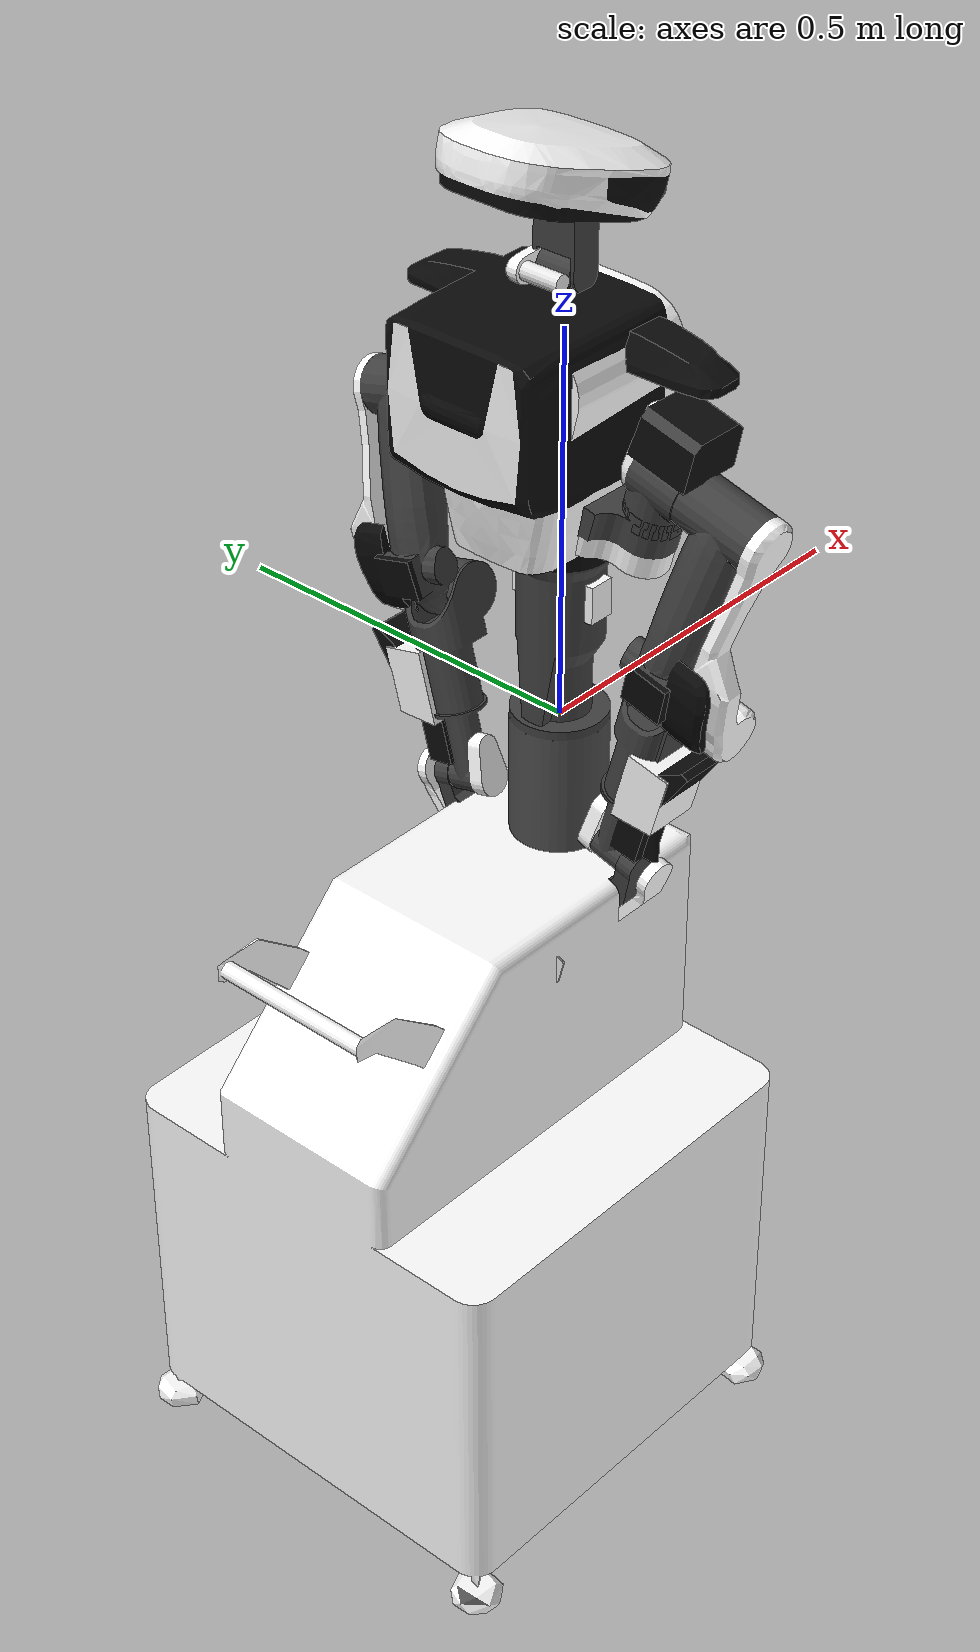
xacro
<?xml version="1.0"?>
<robot name="NextageOpen"
       xmlns:xacro="http://www.ros.org/wiki/xacro">

  <xacro:include filename="$(find nextage_description)/urdf/NextageOpen.urdf" />
  <xacro:include filename="$(find nextage_description)/urdf/nxo_gz_camera.xacro" />

  <xacro:property name="M_PI" value="3.1415926535897931" />
  <xacro:property name="jnt_head_camera_displacement_x" value="0.0175" />
  <xacro:property name="jnt_head_camera_displacement_y" value="0.0725" />
  <xacro:property name="jnt_head_camera_displacement_z" value="0.105" />
  <xacro:property name="jnt_head_camera_rot_y" value="0.25" />
  <xacro:property name="link_head_camera_rot_z" value="0.05" />

  <xacro:camera_joint_link_gzplugin
         camera_name="CAMERA_HEAD_L" link_parent="HEAD_JOINT1_Link"
         jnt_displacement_x="${jnt_head_camera_displacement_x}" jnt_displacement_y="${jnt_head_camera_displacement_y}" jnt_displacement_z="${jnt_head_camera_displacement_z}"
         jnt_rotation_x="0" jnt_rotation_y="${jnt_head_camera_rot_y}" jnt_rotation_z="0"
         link_displacement_x="0.0325" link_displacement_y="0" link_displacement_z="0"
         link_rotation_x="0" link_rotation_y="${M_PI/2}" link_rotation_z="-${link_head_camera_rot_z}" />

  <xacro:camera_joint_link_gzplugin
         camera_name="CAMERA_HEAD_R" link_parent="HEAD_JOINT1_Link"
         jnt_displacement_x="${jnt_head_camera_displacement_x}" jnt_displacement_y="-${jnt_head_camera_displacement_y}" jnt_displacement_z="${jnt_head_camera_displacement_z}"
         jnt_rotation_x="0" jnt_rotation_y="${jnt_head_camera_rot_y}" jnt_rotation_z="0"
         link_displacement_x="0.0325" link_displacement_y="0" link_displacement_z="0"
         link_rotation_x="0" link_rotation_y="${M_PI/2}" link_rotation_z="${link_head_camera_rot_z}" />

  <!-- TODO hand cameras can be added here with the very similar code as
            headmount cameras. -->
</robot>

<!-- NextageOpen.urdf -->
<robot name="NextageOpen"
       xmlns:xi="http://www.w3.org/2001/XInclude"
       xmlns:gazebo="http://playerstage.sourceforge.net/gazebo/xmlschema/#gz"
       xmlns:model="http://playerstage.sourceforge.net/gazebo/xmlschema/#model"
       xmlns:sensor="http://playerstage.sourceforge.net/gazebo/xmlschema/#sensor"
       xmlns:body="http://playerstage.sourceforge.net/gazebo/xmlschema/#body"
       xmlns:geom="http://playerstage.sourceforge.net/gazebo/xmlschema/#geom"
       xmlns:joint="http://playerstage.sourceforge.net/gazebo/xmlschema/#joint"
       xmlns:interface="http://playerstage.sourceforge.net/gazebo/xmlschema/#interface"
       xmlns:rendering="http://playerstage.sourceforge.net/gazebo/xmlschema/#rendering"
       xmlns:renderable="http://playerstage.sourceforge.net/gazebo/xmlschema/#renderable"
       xmlns:controller="http://playerstage.sourceforge.net/gazebo/xmlschema/#controller"
       xmlns:physics="http://playerstage.sourceforge.net/gazebo/xmlschema/#physics"
       xmlns:xacro="http://www.ros.org/wiki/xacro">
  <xacro:include filename="$(find nextage_description)/urdf/materials.urdf.xacro" />

  <xacro:macro name="gazebo_nx_link" params="name color">
    <gazebo reference="gazebo_${name}">
      <material>Gazebo/${color}</material>
    </gazebo>
  </xacro:macro>

  <xacro:macro name="transmission_nx_joint" params="name">
    <transmission name="${name}_Trans">
      <type>transmission_interface/SimpleTransmission</type>
      <joint name="${name}">
        <hardwareInterface>EffortJointInterface</hardwareInterface>
      </joint>
      <actuator name="${name}_Motor">
        <hardwareInterface>EffortJointInterface</hardwareInterface>
        <mechanicalReduction>1</mechanicalReduction>
      </actuator>
    </transmission>
  </xacro:macro>

  <xacro:gazebo_nx_link name="WAIST" color="Black" />
  <link name="WAIST">
    <visual>
      <origin xyz="0 0 0.97" rpy="0 -0 0"/>
      <geometry>
        <mesh filename="package://nextage_description/urdf/meshes/WAIST_Link_mesh.dae" scale="1 1 1" />
      </geometry>
    </visual>
    <collision>
      <origin xyz="0 0 0.97" rpy="0 -0 0"/>
      <geometry>
        <mesh filename="package://nextage_description/urdf/meshes/WAIST_Link_mesh.dae" scale="1 1 1" />
      </geometry>
    </collision>
    <inertial>
      <mass value="1000" />
      <origin xyz="0 0 0" rpy="0 -0 0"/>
      <inertia ixx="20" ixy="0" ixz="0" iyy="20" iyz="0" izz="20"/>
    </inertial>
  </link>

  <xacro:gazebo_nx_link name="CHEST_JOINT0_Link" color="Black" />
  <link name="CHEST_JOINT0_Link">
    <visual>
      <origin xyz="0 0 0" rpy="0 -0 0"/>
      <geometry>
        <mesh filename="package://nextage_description/urdf/meshes/CHEST_JOINT0_Link_mesh.dae" scale="1 1 1" />
      </geometry>
    </visual>
    <collision>
      <origin xyz="0 0 0" rpy="0 -0 0"/>
      <geometry>
        <mesh filename="package://nextage_description/urdf/meshes/CHEST_JOINT0_Link_mesh.dae" scale="1 1 1" />
      </geometry>
    </collision>
    <inertial>
      <mass value="3.0" />
      <origin xyz="0 0 0" rpy="0 -0 0"/>
      <inertia ixx="0.0639575" ixy="-0.00022833" ixz="0.00011172" iyy="0.0310845" iyz="6.48e-05" izz="0.0501107"/>
    </inertial>
  </link>

  <xacro:gazebo_nx_link name="HEAD_JOINT0_Link" color="Black" />
  <link name="HEAD_JOINT0_Link">
    <visual>
      <origin xyz="0 0 0.5695" rpy="0 -0 0"/>
      <geometry>
        <mesh filename="package://nextage_description/urdf/meshes/HEAD_JOINT0_Link_mesh.dae" scale="1 1 1" />
      </geometry>
    </visual>
    <collision>
      <origin xyz="0 0 0.5695" rpy="0 -0 0"/>
      <geometry>
        <mesh filename="package://nextage_description/urdf/meshes/HEAD_JOINT0_Link_mesh.dae" scale="1 1 1" />
      </geometry>
    </collision>
    <inertial>
      <mass value="0.317929" />
      <origin xyz="-2.292e-05 0.00547848 -0.00784016" rpy="0 -0 0"/>
      <inertia ixx="0.00027682" ixy="3e-08" ixz="-3.3e-07" iyy="0.00013009" iyz="-1.092e-05" izz="0.00020954"/>
    </inertial>
  </link>

  <xacro:gazebo_nx_link name="HEAD_JOINT1_Link" color="Black" />
  <link name="HEAD_JOINT1_Link">
    <visual>
      <origin xyz="0 0 0" rpy="0 -0 0"/>
      <geometry>
        <mesh filename="package://nextage_description/urdf/meshes/HEAD_JOINT1_Link_mesh.dae" scale="1 1 1" />
      </geometry>
    </visual>
    <collision>
      <origin xyz="0 0 0" rpy="0 -0 0"/>
      <geometry>
        <mesh filename="package://nextage_description/urdf/meshes/HEAD_JOINT1_Link_mesh.dae" scale="1 1 1" />
      </geometry>
    </collision>
    <inertial>
      <mass value="0.0808593" />
      <inertia ixx="1e-3" ixy="0" ixz="0" iyy="1e-3" iyz="0" izz="1e-3"/>
    </inertial>
  </link>

  <xacro:gazebo_nx_link name="LARM_JOINT0_Link" color="Black" />
  <link name="LARM_JOINT0_Link">
    <visual>
      <origin xyz="0 0.145 0.370296" rpy="-0.261799 0 0"/>
      <geometry>
        <mesh filename="package://nextage_description/urdf/meshes/LARM_JOINT0_Link_mesh.dae" scale="1 1 1" />
      </geometry>
    </visual>
    <collision>
      <origin xyz="0 0.145 0.370296" rpy="-0.261799 0 0"/>
      <geometry>
        <mesh filename="package://nextage_description/urdf/meshes/LARM_JOINT0_Link_mesh.dae" scale="1 1 1" />
      </geometry>
    </collision>
    <inertial>
      <mass value="1.32626" />
      <origin xyz="-0.00226388 -0.00521383 0.0156081" rpy="0 -0 0"/>
      <inertia ixx="0.00207537" ixy="0.00011276" ixz="8.927e-05" iyy="0.00240295" iyz="-4.57e-05" izz="0.00141912"/>
    </inertial>
  </link>
  <xacro:gazebo_nx_link name="LARM_JOINT1_Link" color="Black" />
  <link name="LARM_JOINT1_Link">
    <visual>
      <origin xyz="0 0 0" rpy="0 -0 0"/>
      <geometry>
        <mesh filename="package://nextage_description/urdf/meshes/LARM_JOINT1_Link_mesh.dae" scale="1 1 1" />
      </geometry>
    </visual>
    <collision>
      <origin xyz="0 0 0" rpy="0 -0 0"/>
      <geometry>
        <mesh filename="package://nextage_description/urdf/meshes/LARM_JOINT1_Link_mesh.dae" scale="1 1 1" />
      </geometry>
    </collision>
    <inertial>
      <mass value="1.14898" />
      <origin xyz="-5.236e-05 0.0583134 -0.107061" rpy="0 -0 0"/>
      <inertia ixx="0.0154168" ixy="9.95417e-07" ixz="3.38147e-06" iyy="0.0147117" iyz="0.00213719" izz="0.0012658"/>
    </inertial>
  </link>
  <xacro:gazebo_nx_link name="LARM_JOINT2_Link" color="Black" />
  <link name="LARM_JOINT2_Link">
    <visual>
      <origin xyz="0 0.095 -0.25" rpy="0 -0 0"/>
      <geometry>
        <mesh filename="package://nextage_description/urdf/meshes/LARM_JOINT2_Link_mesh.dae" scale="1 1 1" />
      </geometry>
    </visual>
    <collision>
      <origin xyz="0 0.095 -0.25" rpy="0 -0 0"/>
      <geometry>
        <mesh filename="package://nextage_description/urdf/meshes/LARM_JOINT2_Link_mesh.dae" scale="1 1 1" />
      </geometry>
    </collision>
    <inertial>
      <mass value="0.577518" />
      <origin xyz="-2.254e-05 0.00167107 -0.0715116" rpy="0 -0 0"/>
      <inertia ixx="0.00143966" ixy="-3e-07" ixz="1.2e-06" iyy="0.00141763" iyz="-7.596e-05" izz="0.0001972"/>
    </inertial>
  </link>
  <xacro:gazebo_nx_link name="LARM_JOINT3_Link" color="Black" />
  <link name="LARM_JOINT3_Link">
    <visual>
      <origin xyz="-0.03 0 0" rpy="0 -0 0"/>
      <geometry>
        <mesh filename="package://nextage_description/urdf/meshes/LARM_JOINT3_Link_mesh.dae" scale="1 1 1" />
      </geometry>
    </visual>
    <collision>
      <origin xyz="-0.03 0 0" rpy="0 -0 0"/>
      <geometry>
        <mesh filename="package://nextage_description/urdf/meshes/LARM_JOINT3_Link_mesh.dae" scale="1 1 1" />
      </geometry>
    </collision>
    <inertial>
      <mass value="0.457418" />
      <origin xyz="-1.788e-05 -0.00395812 -0.20273" rpy="0 -0 0"/>
      <inertia ixx="0.00069205" ixy="3e-08" ixz="5.2e-07" iyy="0.00068903" iyz="-1.915e-05" izz="0.00013509"/>
    </inertial>
  </link>
  <xacro:gazebo_nx_link name="LARM_JOINT4_Link" color="Black" />
  <link name="LARM_JOINT4_Link">
    <visual>
      <origin xyz="0 0 -0.235" rpy="0 -0 0"/>
      <geometry>
        <mesh filename="package://nextage_description/urdf/meshes/LARM_JOINT4_Link_mesh.dae" scale="1 1 1" />
      </geometry>
    </visual>
    <collision>
      <origin xyz="0 0 -0.235" rpy="0 -0 0"/>
      <geometry>
        <mesh filename="package://nextage_description/urdf/meshes/LARM_JOINT4_Link_mesh.dae" scale="1 1 1" />
      </geometry>
    </collision>
    <inertial>
      <mass value="0.418434" />
      <origin xyz="0.00243131 0.00379733 -0.0577036" rpy="0 -0 0"/>
      <inertia ixx="0.00052016" ixy="1.69e-06" ixz="7.9e-06" iyy="0.00050569" iyz="-5.377e-05" izz="0.00014004"/>
    </inertial>
  </link>
  <xacro:gazebo_nx_link name="LARM_JOINT5_Link" color="Black" />
  <link name="LARM_JOINT5_Link">
    <visual>
      <origin xyz="-0.047 0 -0.09" rpy="0 -0 0"/>
      <geometry>
        <mesh filename="package://nextage_description/urdf/meshes/LARM_JOINT5_Link_mesh.dae" scale="1 1 1" />
      </geometry>
    </visual>
    <collision>
      <origin xyz="-0.047 0 -0.09" rpy="0 -0 0"/>
      <geometry>
        <mesh filename="package://nextage_description/urdf/meshes/LARM_JOINT5_Link_mesh.dae" scale="1 1 1" />
      </geometry>
    </collision>
    <inertial>
      <mass value="1.05156" />
      <origin xyz="-0.048476 -3.2e-06 -0.0388988" rpy="0 -0 0"/>
      <inertia ixx="0.00194072" ixy="1.1e-07" ixz="-0.00042482" iyy="0.00209392" iyz="1.2e-07" izz="0.00035788"/>
    </inertial>
  </link>
  <xacro:gazebo_nx_link name="RARM_JOINT0_Link" color="Black" />
  <link name="RARM_JOINT0_Link">
    <visual>
      <origin xyz="0 -0.145 0.370296" rpy="0.261799 -0 0"/>
      <geometry>
        <mesh filename="package://nextage_description/urdf/meshes/RARM_JOINT0_Link_mesh.dae" scale="1 1 1" />
      </geometry>
    </visual>
    <collision>
      <origin xyz="0 -0.145 0.370296" rpy="0.261799 -0 0"/>
      <geometry>
        <mesh filename="package://nextage_description/urdf/meshes/RARM_JOINT0_Link_mesh.dae" scale="1 1 1" />
      </geometry>
    </collision>
    <inertial>
      <mass value="1.32626" />
      <origin xyz="-0.00226388 0.00521383 0.0156081" rpy="0 -0 0"/>
      <inertia ixx="0.00207537" ixy="-0.00011276" ixz="8.927e-05" iyy="0.00240295" iyz="4.57e-05" izz="0.00141912"/>
    </inertial>
  </link>
  <xacro:gazebo_nx_link name="RARM_JOINT1_Link" color="Black" />
  <link name="RARM_JOINT1_Link">
    <visual>
      <origin xyz="0 0 0" rpy="0 -0 0"/>
      <geometry>
        <mesh filename="package://nextage_description/urdf/meshes/RARM_JOINT1_Link_mesh.dae" scale="1 1 1" />
      </geometry>
    </visual>
    <collision>
      <origin xyz="0 0 0" rpy="0 -0 0"/>
      <geometry>
        <mesh filename="package://nextage_description/urdf/meshes/RARM_JOINT1_Link_mesh.dae" scale="1 1 1" />
      </geometry>
    </collision>
    <inertial>
      <mass value="1.14898" />
      <origin xyz="-5.236e-05 -0.0583134 -0.107061" rpy="0 -0 0"/>
      <inertia ixx="0.0154168" ixy="-9.95417e-07" ixz="3.38147e-06" iyy="0.0147117" iyz="-0.00213719" izz="0.0012658"/>
    </inertial>
  </link>
  <xacro:gazebo_nx_link name="RARM_JOINT2_Link" color="Black" />
  <link name="RARM_JOINT2_Link">
    <visual>
      <origin xyz="0 -0.095 -0.25" rpy="0 -0 0"/>
      <geometry>
        <mesh filename="package://nextage_description/urdf/meshes/RARM_JOINT2_Link_mesh.dae" scale="1 1 1" />
      </geometry>
    </visual>
    <collision>
      <origin xyz="0 -0.095 -0.25" rpy="0 -0 0"/>
      <geometry>
        <mesh filename="package://nextage_description/urdf/meshes/RARM_JOINT2_Link_mesh.dae" scale="1 1 1" />
      </geometry>
    </collision>
    <inertial>
      <mass value="0.577518" />
      <origin xyz="-2.254e-05 -0.00167107 -0.0715116" rpy="0 -0 0"/>
      <inertia ixx="0.00143966" ixy="3e-07" ixz="1.2e-06" iyy="0.00141763" iyz="7.596e-05" izz="0.0001972"/>
    </inertial>
  </link>
  <xacro:gazebo_nx_link name="RARM_JOINT4_Link" color="Black" />
  <link name="RARM_JOINT3_Link">
    <visual>
      <origin xyz="-0.03 0 0" rpy="0 -0 0"/>
      <geometry>
        <mesh filename="package://nextage_description/urdf/meshes/RARM_JOINT3_Link_mesh.dae" scale="1 1 1" />
      </geometry>
    </visual>
    <collision>
      <origin xyz="-0.03 0 0" rpy="0 -0 0"/>
      <geometry>
        <mesh filename="package://nextage_description/urdf/meshes/RARM_JOINT3_Link_mesh.dae" scale="1 1 1" />
      </geometry>
    </collision>
    <inertial>
      <mass value="0.457418" />
      <origin xyz="-1.788e-05 0.00395812 -0.20273" rpy="0 -0 0"/>
      <inertia ixx="0.00069205" ixy="-3e-08" ixz="5.2e-07" iyy="0.00068903" iyz="1.915e-05" izz="0.00013509"/>
    </inertial>
  </link>
  <xacro:gazebo_nx_link name="RARM_JOINT4_Link" color="Black" />
  <link name="RARM_JOINT4_Link">
    <visual>
      <origin xyz="0 0 -0.235" rpy="0 -0 0"/>
      <geometry>
        <mesh filename="package://nextage_description/urdf/meshes/RARM_JOINT4_Link_mesh.dae" scale="1 1 1" />
      </geometry>
    </visual>
    <collision>
      <origin xyz="0 0 -0.235" rpy="0 -0 0"/>
      <geometry>
        <mesh filename="package://nextage_description/urdf/meshes/RARM_JOINT4_Link_mesh.dae" scale="1 1 1" />
      </geometry>
    </collision>
    <inertial>
      <mass value="0.418434" />
      <origin xyz="0.00243131 -0.00379733 -0.0577036" rpy="0 -0 0"/>
      <inertia ixx="0.00052016" ixy="-1.69e-06" ixz="7.9e-06" iyy="0.00050569" iyz="5.377e-05" izz="0.00014004"/>
    </inertial>
  </link>
  <xacro:gazebo_nx_link name="RARM_JOINT5_Link" color="Black" />
  <link name="RARM_JOINT5_Link">
    <visual>
      <origin xyz="-0.047 0 -0.09" rpy="0 -0 0"/>
      <geometry>
        <mesh filename="package://nextage_description/urdf/meshes/RARM_JOINT5_Link_mesh.dae" scale="1 1 1" />
      </geometry>
    </visual>
    <collision>
      <origin xyz="-0.047 0 -0.09" rpy="0 -0 0"/>
      <geometry>
        <mesh filename="package://nextage_description/urdf/meshes/RARM_JOINT5_Link_mesh.dae" scale="1 1 1" />
      </geometry>
    </collision>
    <inertial>
      <mass value="1.05156" />
      <origin xyz="-0.048476 3.2e-06 -0.0388988" rpy="0 -0 0"/>
      <inertia ixx="0.00194072" ixy="-1.1e-07" ixz="-0.00042482" iyy="0.00209392" iyz="-1.2e-07" izz="0.00035788"/>
    </inertial>
  </link>
  <xacro:transmission_nx_joint name="CHEST_JOINT0" />
  <joint name="CHEST_JOINT0" type="revolute">
    <parent link="WAIST"/>
    <child  link="CHEST_JOINT0_Link"/>
    <origin xyz="0 0 0" rpy="0 -0 0 "/>
    <axis   xyz="0 0 1"/>
    <limit lower="-2.84489" upper="2.84489" effort="100" velocity="0.5" />
    <dynamics damping="0.2" friction="0" />
  </joint>
  <xacro:transmission_nx_joint name="HEAD_JOINT0" />
  <joint name="HEAD_JOINT0" type="revolute">
    <parent link="CHEST_JOINT0_Link"/>
    <child  link="HEAD_JOINT0_Link"/>
    <origin xyz="0 0 0.5695" rpy="0 -0 0 "/>
    <axis   xyz="0 0 1"/>
    <limit lower="-1.22173" upper="1.22173" effort="100" velocity="0.5" />
    <dynamics damping="0.2" friction="0" />
  </joint>
  <xacro:transmission_nx_joint name="HEAD_JOINT1" />
  <joint name="HEAD_JOINT1" type="revolute">
    <parent link="HEAD_JOINT0_Link"/>
    <child  link="HEAD_JOINT1_Link"/>
    <origin xyz="0 0 0" rpy="0 -0 0 "/>
    <axis   xyz="0 1 0"/>
    <limit lower="-0.349066" upper="1.22173" effort="100" velocity="0.5" />
    <dynamics damping="0.2" friction="0" />
  </joint>
  <xacro:transmission_nx_joint name="LARM_JOINT0" />
  <joint name="LARM_JOINT0" type="revolute">
    <parent link="CHEST_JOINT0_Link"/>
    <child  link="LARM_JOINT0_Link"/>
    <origin xyz="0 0.145 0.370296" rpy="-0.261799 0 0 "/>
    <axis   xyz="0 0 1"/>
    <limit lower="-1.53589" upper="1.53589" effort="150" velocity="0.5" />
    <dynamics damping="0.2" friction="0" />
  </joint>
  <xacro:transmission_nx_joint name="LARM_JOINT1" />
  <joint name="LARM_JOINT1" type="revolute">
    <parent link="LARM_JOINT0_Link"/>
    <child  link="LARM_JOINT1_Link"/>
    <origin xyz="0 0 0" rpy="0 -0 0 "/>
    <axis   xyz="0 1 0"/>
    <limit lower="-2.44346" upper="1.0472" effort="200" velocity="0.5" />
    <dynamics damping="0.2" friction="0" />
  </joint>
  <xacro:transmission_nx_joint name="LARM_JOINT2" />
  <joint name="LARM_JOINT2" type="revolute">
    <parent link="LARM_JOINT1_Link"/>
    <child  link="LARM_JOINT2_Link"/>
    <origin xyz="0 0.095 -0.25" rpy="0 -0 0 "/>
    <axis   xyz="0 1 0"/>
    <limit lower="-2.75762" upper="0" effort="100" velocity="0.5" />
    <dynamics damping="0.2" friction="0" />
  </joint>
  <xacro:transmission_nx_joint name="LARM_JOINT3" />
  <joint name="LARM_JOINT3" type="revolute">
    <parent link="LARM_JOINT2_Link"/>
    <child  link="LARM_JOINT3_Link"/>
    <origin xyz="-0.03 0 0" rpy="0 -0 0 "/>
    <axis   xyz="0 0 1"/>
    <limit lower="-1.8326" upper="2.87979" effort="100" velocity="0.5" />
    <dynamics damping="0.2" friction="0" />
  </joint>
  <xacro:transmission_nx_joint name="LARM_JOINT4" />
  <joint name="LARM_JOINT4" type="revolute">
    <parent link="LARM_JOINT3_Link"/>
    <child  link="LARM_JOINT4_Link"/>
    <origin xyz="0 0 -0.235" rpy="0 -0 0 "/>
    <axis   xyz="0 1 0"/>
    <limit lower="-1.74533" upper="1.74533" effort="100" velocity="0.5" />
    <dynamics damping="0.2" friction="0" />
  </joint>
  <xacro:transmission_nx_joint name="LARM_JOINT5" />
  <joint name="LARM_JOINT5" type="revolute">
    <parent link="LARM_JOINT4_Link"/>
    <child  link="LARM_JOINT5_Link"/>
    <origin xyz="-0.047 0 -0.09" rpy="0 -0 0 "/>
    <axis   xyz="1 0 0"/>
    <limit lower="-2.84489" upper="2.84489" effort="100" velocity="0.5" />
    <dynamics damping="0.2" friction="0" />
  </joint>
  <xacro:transmission_nx_joint name="RARM_JOINT0" />
  <joint name="RARM_JOINT0" type="revolute">
    <parent link="CHEST_JOINT0_Link"/>
    <child  link="RARM_JOINT0_Link"/>
    <origin xyz="0 -0.145 0.370296" rpy="0.261799 -0 0 "/>
    <axis   xyz="0 0 1"/>
    <limit lower="-1.53589" upper="1.53589" effort="150" velocity="0.5" />
    <dynamics damping="0.2" friction="0" />
  </joint>
  <xacro:transmission_nx_joint name="RARM_JOINT1" />
  <joint name="RARM_JOINT1" type="revolute">
    <parent link="RARM_JOINT0_Link"/>
    <child  link="RARM_JOINT1_Link"/>
    <origin xyz="0 0 0" rpy="0 -0 0 "/>
    <axis   xyz="0 1 0"/>
    <limit lower="-2.44346" upper="1.0472" effort="200" velocity="0.5" />
    <dynamics damping="0.2" friction="0" />
  </joint>
  <xacro:transmission_nx_joint name="RARM_JOINT2" />
  <joint name="RARM_JOINT2" type="revolute">
    <parent link="RARM_JOINT1_Link"/>
    <child  link="RARM_JOINT2_Link"/>
    <origin xyz="0 -0.095 -0.25" rpy="0 -0 0 "/>
    <axis   xyz="0 1 0"/>
    <limit lower="-2.75762" upper="0" effort="100" velocity="0.5" />
    <dynamics damping="0.2" friction="0" />
  </joint>
  <xacro:transmission_nx_joint name="RARM_JOINT3" />
  <joint name="RARM_JOINT3" type="revolute">
    <parent link="RARM_JOINT2_Link"/>
    <child  link="RARM_JOINT3_Link"/>
    <origin xyz="-0.03 0 0" rpy="0 -0 0 "/>
    <axis   xyz="0 0 1"/>
    <limit lower="-2.87979" upper="1.8326" effort="100" velocity="0.5" />
    <dynamics damping="0.2" friction="0" />
  </joint>
  <xacro:transmission_nx_joint name="RARM_JOINT4" />
  <joint name="RARM_JOINT4" type="revolute">
    <parent link="RARM_JOINT3_Link"/>
    <child  link="RARM_JOINT4_Link"/>
    <origin xyz="0 0 -0.235" rpy="0 -0 0 "/>
    <axis   xyz="0 1 0"/>
    <limit lower="-1.74533" upper="1.74533" effort="100" velocity="0.5" />
    <dynamics damping="0.2" friction="0" />
  </joint>
  <xacro:transmission_nx_joint name="RARM_JOINT5" />
  <joint name="RARM_JOINT5" type="revolute">
    <parent link="RARM_JOINT4_Link"/>
    <child  link="RARM_JOINT5_Link"/>
    <origin xyz="-0.047 0 -0.09" rpy="0 -0 0 "/>
    <axis   xyz="1 0 0"/>
    <limit lower="-2.84489" upper="2.84489" effort="100" velocity="0.5" />
    <dynamics damping="0.2" friction="0" />
  </joint>

  <!-- Gazebo plugin for ROS Control -->
  <gazebo>
    <plugin name="gazebo_ros_control" filename="libgazebo_ros_control.so">
      <robotNamespace>/</robotNamespace>
      <robotSimType>gazebo_ros_control/DefaultRobotHWSim</robotSimType>
      <legacyModeNS>true</legacyModeNS>
    </plugin>
  </gazebo>

</robot>

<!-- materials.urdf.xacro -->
<robot>

    <material name="Black">
        <color rgba="0.0 0.0 0.0 1.0"/>
    </material>

    <material name="Blue">
        <color rgba="0.0 0.0 0.8 1.0"/>
    </material>

    <material name="Green">
        <color rgba="0.0 0.8 0.0 1.0"/>
    </material>

    <material name="LightGrey">
        <color rgba="0.6 0.6 0.6 1.0"/>
    </material>

    <material name="Grey">
        <color rgba="0.4 0.4 0.4 1.0"/>
    </material>

    <material name="DarkGrey">
        <color rgba="0.2 0.2 0.2 1.0"/>
    </material>

    <material name="Red">
        <color rgba="0.8 0.0 0.0 1.0"/>
    </material>

    <material name="White">
        <color rgba="1.0 1.0 1.0 1.0"/>
    </material>

</robot>

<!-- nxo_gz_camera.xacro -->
<robot xmlns:xacro="http://www.ros.org/wiki/xacro">
	<xacro:property name="M_PI" value="3.1415926535897931" />

	<!-- Adding camera for simulation -->
	<xacro:macro name="camera_joint_link_gzplugin"
		params="camera_name link_parent jnt_displacement_x jnt_displacement_y jnt_displacement_z jnt_rotation_x jnt_rotation_y jnt_rotation_z link_displacement_x link_displacement_y link_displacement_z link_rotation_x link_rotation_y link_rotation_z">
		<joint name="${camera_name}" type="fixed">
			<origin
				xyz="${jnt_displacement_x} ${jnt_displacement_y} ${jnt_displacement_z}"
				rpy="${jnt_rotation_x} ${jnt_rotation_y} ${jnt_rotation_z}" />
			<parent link="${link_parent}" />
			<child link="${camera_name}_Link" />
		</joint>
		<link name="${camera_name}_Link">
			<visual>
				<origin
					xyz="${link_displacement_x} ${link_displacement_y} ${link_displacement_z}"
					rpy="${link_rotation_x} ${link_rotation_y} ${link_rotation_z}" />
				<geometry>
					<cylinder length="0.01" radius="0.015" />
				</geometry>
				<material name="blue" />
			</visual>
			<inertial>
				<origin xyz="0 0 0" rpy="0 0 0" />
				<mass value="1" />
				<inertia ixx="1.0" ixy="0.0" ixz="0.0" iyy="1.0" iyz="0.0"
					izz="1.0" />
			</inertial>
		</link>
		<gazebo reference="${camera_name}_Link">
			<sensor type="camera" name="${camera_name}">
				<update_rate>30.0</update_rate>
				<camera name="${camera_name}">
					<horizontal_fov>1.3962634</horizontal_fov>
					<image>
						<width>800</width>
						<height>800</height>
						<format>R8G8B8</format>
					</image>
					<clip>
						<near>0.1</near>
						<far>30</far>
					</clip>
					<noise>
						<type>gaussian</type>
						<!-- Noise is sampled independently per pixel on each frame. That pixel's
							noise value is added to each of its color channels, which at that point lie
							in the range [0,1]. -->
						<mean>0.0</mean>
						<stddev>0.007</stddev>
					</noise>
				</camera>
				<plugin name="camera_controller" filename="libgazebo_ros_camera.so">
					<alwaysOn>true</alwaysOn>
					<updateRate>0.0</updateRate>
					<cameraName>${camera_name}</cameraName>
					<imageTopicName>image_raw</imageTopicName>
					<cameraInfoTopicName>camera_info</cameraInfoTopicName>
					<frameName>${camera_name}_Link_frame</frameName>
					<hackBaseline>0.07</hackBaseline>
					<distortionK1>0.0</distortionK1>
					<distortionK2>0.0</distortionK2>
					<distortionK3>0.0</distortionK3>
					<distortionT1>0.0</distortionT1>
					<distortionT2>0.0</distortionT2>
				</plugin>
			</sensor>
		</gazebo>
	</xacro:macro>
</robot>
